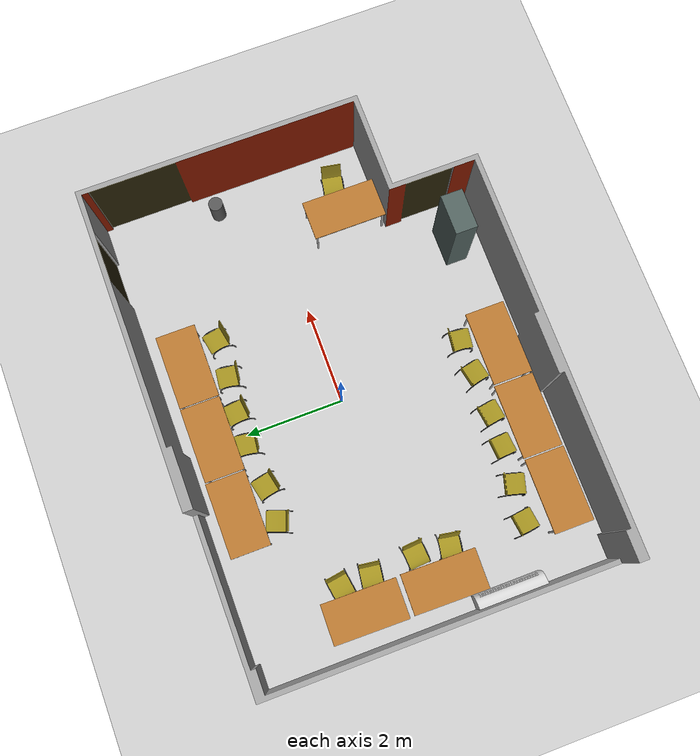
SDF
<sdf version="1.6">
 <world name="default">
  <plugin name="projekt_przejsciowy" filename="libprojekt_przejsciowy.so"/>
  <light name="direct_light" type="directional">
   <pose>0 0 10 0 -0 0</pose>
   <diffuse>1 1 1 1</diffuse>
   <specular>0.1 0.1 0.1 1</specular>
   <attenuation>
    <range>1000</range>
    <constant>0.9</constant>
    <linear>0.01</linear>
    <quadratic>0.001</quadratic>
   </attenuation>
   <direction>-0.5 0.5 -1</direction>
  </light>
  <light name="point_light" type="point">
   <pose>0 0 2 0 -0 0</pose>
   <diffuse>1 1 1 1</diffuse>
   <specular>0.1 0.1 0.1 1</specular>
   <attenuation>
    <range>1000</range>
    <constant>0.9</constant>
    <linear>0.01</linear>
    <quadratic>0.001</quadratic>
   </attenuation>
   <direction>-0.5 0.5 -1</direction>
  </light>
  <model name="ground_plane">
   <static>1</static>
   <link name="link">
    <collision name="collision">
     <geometry><plane><normal>0 0 1</normal><size>100 100</size></plane></geometry>
     <surface><friction><ode><mu>100</mu><mu2>50</mu2></ode></friction></surface>
    </collision>
    <visual name="visual">
     <cast_shadows>0</cast_shadows>
     <geometry><plane><normal>0 0 1</normal><size>100 100</size></plane></geometry>
     <material>
      <script><uri>file://media/materials/scripts/gazebo.material</uri><name>Gazebo/Grey</name></script>
     </material>
    </visual>
   </link>
  </model>
  <gravity>0 0 -9.8</gravity>
  <magnetic_field>6e-06 2.3e-05 -4.2e-05</magnetic_field>
  <atmosphere type="adiabatic"/>
  <physics name="default_physics" default="0" type="ode">
   <max_step_size>0.001</max_step_size>
   <real_time_factor>1</real_time_factor>
   <real_time_update_rate>1000</real_time_update_rate>
  </physics>
  <scene><ambient>0.4 0.4 0.4 1</ambient><background>0.7 0.7 0.7 1</background><shadows>0</shadows></scene>
  <spherical_coordinates>
   <surface_model>EARTH_WGS84</surface_model>
   <latitude_deg>0</latitude_deg>
   <longitude_deg>0</longitude_deg>
   <elevation>0</elevation>
   <heading_deg>0</heading_deg>
  </spherical_coordinates>
  <model name="sala_L15">
   <static>1</static>
   <link name="link">
    <collision name="collision">
     <geometry><mesh><uri>model://sala_L15/meshes/Sala_L15.dae</uri><scale>1 1 1</scale></mesh></geometry>
    </collision>
    <visual name="visual">
     <geometry><mesh><uri>model://sala_L15/meshes/Sala_L15.dae</uri><scale>1 1 1</scale></mesh></geometry>
    </visual>
   </link>
   <pose>3.14624 -2.13364 0 0 -0 0</pose>
  </model>
  <model name="stol">
   <static>1</static>
   <link name="link">
    <collision name="collision">
     <geometry><mesh><uri>model://stol/meshes/Stol.dae</uri><scale>1 1 1</scale></mesh></geometry>
    </collision>
    <visual name="visual">
     <geometry><mesh><uri>model://stol/meshes/Stol.dae</uri><scale>1 1 1</scale></mesh></geometry>
    </visual>
   </link>
   <pose>3.21652 -0.648206 0 0 0 -1.5708</pose>
  </model>
  <model name="krzeslo">
   <static>1</static>
   <link name="link">
    <collision name="collision">
     <geometry><mesh><uri>model://krzeslo/meshes/Krzeslo.dae</uri><scale>1 1 1</scale></mesh></geometry>
    </collision>
    <visual name="visual">
     <geometry><mesh><uri>model://krzeslo/meshes/Krzeslo.dae</uri><scale>1 1 1</scale></mesh></geometry>
    </visual>
   </link>
   <pose>3.97712 -1.54865 0 0 0 -1.75194</pose>
  </model>
  <model name="smietnik">
   <static>1</static>
   <link name="link">
    <collision name="collision">
     <geometry><mesh><uri>model://smietnik/meshes/Smietnik.dae</uri><scale>1 1 1</scale></mesh></geometry>
    </collision>
    <visual name="visual">
     <geometry><mesh><uri>model://smietnik/meshes/Smietnik.dae</uri><scale>1 1 1</scale></mesh></geometry>
    </visual>
   </link>
   <pose>4.61075 1.02676 0 0 -0 0</pose>
  </model>
  <model name="stol_0">
   <static>1</static>
   <link name="link">
    <collision name="collision">
     <geometry><mesh><uri>model://stol/meshes/Stol.dae</uri><scale>1 1 1</scale></mesh></geometry>
    </collision>
    <visual name="visual">
     <geometry><mesh><uri>model://stol/meshes/Stol.dae</uri><scale>1 1 1</scale></mesh></geometry>
    </visual>
   </link>
   <pose>0.861901 2.2866 0 0 -0 0</pose>
  </model>
  <model name="stol_1">
   <static>1</static>
   <link name="link">
    <collision name="collision">
     <geometry><mesh><uri>model://stol/meshes/Stol.dae</uri><scale>1 1 1</scale></mesh></geometry>
    </collision>
    <visual name="visual">
     <geometry><mesh><uri>model://stol/meshes/Stol.dae</uri><scale>1 1 1</scale></mesh></geometry>
    </visual>
   </link>
   <pose>-0.663628 2.2885 0 0 -0 0</pose>
  </model>
  <model name="stol_2">
   <static>1</static>
   <link name="link">
    <collision name="collision">
     <geometry><mesh><uri>model://stol/meshes/Stol.dae</uri><scale>1 1 1</scale></mesh></geometry>
    </collision>
    <visual name="visual">
     <geometry><mesh><uri>model://stol/meshes/Stol.dae</uri><scale>1 1 1</scale></mesh></geometry>
    </visual>
   </link>
   <pose>-2.18973 2.29579 0 0 -0 0</pose>
  </model>
  <model name="stol_5">
   <static>1</static>
   <link name="link">
    <collision name="collision">
     <geometry><mesh><uri>model://stol/meshes/Stol.dae</uri><scale>1 1 1</scale></mesh></geometry>
    </collision>
    <visual name="visual">
     <geometry><mesh><uri>model://stol/meshes/Stol.dae</uri><scale>1 1 1</scale></mesh></geometry>
    </visual>
   </link>
   <pose>-2.34724 -3.57148 0 0 -0 0</pose>
  </model>
  <model name="stol_6">
   <static>1</static>
   <link name="link">
    <collision name="collision">
     <geometry><mesh><uri>model://stol/meshes/Stol.dae</uri><scale>1 1 1</scale></mesh></geometry>
    </collision>
    <visual name="visual">
     <geometry><mesh><uri>model://stol/meshes/Stol.dae</uri><scale>1 1 1</scale></mesh></geometry>
    </visual>
   </link>
   <pose>-0.813506 -3.5798 0 0 -0 0</pose>
  </model>
  <model name="szafa">
   <static>1</static>
   <link name="link">
    <collision name="collision">
     <geometry><mesh><uri>model://szafa/meshes/Szafa.dae</uri><scale>1 1 1</scale></mesh></geometry>
    </collision>
    <visual name="visual">
     <geometry><mesh><uri>model://szafa/meshes/Szafa.dae</uri><scale>1 1 1</scale></mesh></geometry>
    </visual>
   </link>
   <pose>1.92281 -3.4529 0 0 -0 0</pose>
  </model>
  <model name="kaloryfer">
   <static>1</static>
   <link name="link">
    <collision name="collision">
     <geometry><mesh><uri>model://kaloryfer/meshes/Kaloryfer.dae</uri><scale>1 1 1</scale></mesh></geometry>
    </collision>
    <visual name="visual">
     <geometry><mesh><uri>model://kaloryfer/meshes/Kaloryfer.dae</uri><scale>1 1 1</scale></mesh></geometry>
    </visual>
   </link>
   <pose>-4.45024 -2.41162 0 0 -0 1.5708</pose>
  </model>
  <model name="krzeslo_0">
   <static>1</static>
   <link name="link">
    <collision name="collision">
     <geometry><mesh><uri>model://krzeslo/meshes/Krzeslo.dae</uri><scale>1 1 1</scale></mesh></geometry>
    </collision>
    <visual name="visual">
     <geometry><mesh><uri>model://krzeslo/meshes/Krzeslo.dae</uri><scale>1 1 1</scale></mesh></geometry>
    </visual>
   </link>
   <pose>1.70222 2.11121 0 0 0 -2.95301</pose>
  </model>
  <model name="krzeslo_0_clone">
   <static>1</static>
   <link name="link">
    <collision name="collision">
     <geometry><mesh><uri>model://krzeslo/meshes/Krzeslo.dae</uri><scale>1 1 1</scale></mesh></geometry>
    </collision>
    <visual name="visual">
     <geometry><mesh><uri>model://krzeslo/meshes/Krzeslo.dae</uri><scale>1 1 1</scale></mesh></geometry>
    </visual>
   </link>
   <pose>0.981593 2.20704 0 0 -0 3.01832</pose>
  </model>
  <model name="krzeslo_0_clone_0">
   <static>1</static>
   <link name="link">
    <collision name="collision">
     <geometry><mesh><uri>model://krzeslo/meshes/Krzeslo.dae</uri><scale>1 1 1</scale></mesh></geometry>
    </collision>
    <visual name="visual">
     <geometry><mesh><uri>model://krzeslo/meshes/Krzeslo.dae</uri><scale>1 1 1</scale></mesh></geometry>
    </visual>
   </link>
   <pose>0.202022 2.24026 0 0 0 -3.03765</pose>
  </model>
  <model name="krzeslo_0_clone_1">
   <static>1</static>
   <link name="link">
    <collision name="collision">
     <geometry><mesh><uri>model://krzeslo/meshes/Krzeslo.dae</uri><scale>1 1 1</scale></mesh></geometry>
    </collision>
    <visual name="visual">
     <geometry><mesh><uri>model://krzeslo/meshes/Krzeslo.dae</uri><scale>1 1 1</scale></mesh></geometry>
    </visual>
   </link>
   <pose>-0.41119 2.30069 0 0 -0 3.01665</pose>
  </model>
  <model name="stol_clone">
   <static>1</static>
   <link name="link">
    <collision name="collision">
     <geometry><mesh><uri>model://stol/meshes/Stol.dae</uri><scale>1 1 1</scale></mesh></geometry>
    </collision>
    <visual name="visual">
     <geometry><mesh><uri>model://stol/meshes/Stol.dae</uri><scale>1 1 1</scale></mesh></geometry>
    </visual>
   </link>
   <pose>-4.31419 1.73128 0 0 0 -1.58575</pose>
  </model>
  <model name="stol_clone_0">
   <static>1</static>
   <link name="link">
    <collision name="collision">
     <geometry><mesh><uri>model://stol/meshes/Stol.dae</uri><scale>1 1 1</scale></mesh></geometry>
    </collision>
    <visual name="visual">
     <geometry><mesh><uri>model://stol/meshes/Stol.dae</uri><scale>1 1 1</scale></mesh></geometry>
    </visual>
   </link>
   <pose>-4.32079 0.139882 0 0 0 -1.58575</pose>
  </model>
  <model name="stol_5_clone">
   <static>1</static>
   <link name="link">
    <collision name="collision">
     <geometry><mesh><uri>model://stol/meshes/Stol.dae</uri><scale>1 1 1</scale></mesh></geometry>
    </collision>
    <visual name="visual">
     <geometry><mesh><uri>model://stol/meshes/Stol.dae</uri><scale>1 1 1</scale></mesh></geometry>
    </visual>
   </link>
   <pose>-3.87513 -3.5816 0 0 -0 0</pose>
  </model>
  <model name="krzeslo_0_clone_clone">
   <static>1</static>
   <link name="link">
    <collision name="collision">
     <geometry><mesh><uri>model://krzeslo/meshes/Krzeslo.dae</uri><scale>1 1 1</scale></mesh></geometry>
    </collision>
    <visual name="visual">
     <geometry><mesh><uri>model://krzeslo/meshes/Krzeslo.dae</uri><scale>1 1 1</scale></mesh></geometry>
    </visual>
   </link>
   <pose>-1.37457 2.14992 0 0 0 -2.92538</pose>
  </model>
  <model name="krzeslo_0_clone_clone_0">
   <static>1</static>
   <link name="link">
    <collision name="collision">
     <geometry><mesh><uri>model://krzeslo/meshes/Krzeslo.dae</uri><scale>1 1 1</scale></mesh></geometry>
    </collision>
    <visual name="visual">
     <geometry><mesh><uri>model://krzeslo/meshes/Krzeslo.dae</uri><scale>1 1 1</scale></mesh></geometry>
    </visual>
   </link>
   <pose>-1.95892 2.28323 0 0 -0 2.78777</pose>
  </model>
  <model name="krzeslo_0_clone_clone_0_clone">
   <static>1</static>
   <link name="link">
    <collision name="collision">
     <geometry><mesh><uri>model://krzeslo/meshes/Krzeslo.dae</uri><scale>1 1 1</scale></mesh></geometry>
    </collision>
    <visual name="visual">
     <geometry><mesh><uri>model://krzeslo/meshes/Krzeslo.dae</uri><scale>1 1 1</scale></mesh></geometry>
    </visual>
   </link>
   <pose>-3.59243 1.02759 0 0 0 -1.4196</pose>
  </model>
  <model name="krzeslo_0_clone_clone_0_clone_clone">
   <static>1</static>
   <link name="link">
    <collision name="collision">
     <geometry><mesh><uri>model://krzeslo/meshes/Krzeslo.dae</uri><scale>1 1 1</scale></mesh></geometry>
    </collision>
    <visual name="visual">
     <geometry><mesh><uri>model://krzeslo/meshes/Krzeslo.dae</uri><scale>1 1 1</scale></mesh></geometry>
    </visual>
   </link>
   <pose>-3.66431 0.478732 0 0 0 -1.70864</pose>
  </model>
  <model name="krzeslo_0_clone_clone_0_clone_clone_0">
   <static>1</static>
   <link name="link">
    <collision name="collision">
     <geometry><mesh><uri>model://krzeslo/meshes/Krzeslo.dae</uri><scale>1 1 1</scale></mesh></geometry>
    </collision>
    <visual name="visual">
     <geometry><mesh><uri>model://krzeslo/meshes/Krzeslo.dae</uri><scale>1 1 1</scale></mesh></geometry>
    </visual>
   </link>
   <pose>-3.55468 -0.50423 0 0 0 -1.49503</pose>
  </model>
  <model name="krzeslo_0_clone_clone_0_clone_clone_1">
   <static>1</static>
   <link name="link">
    <collision name="collision">
     <geometry><mesh><uri>model://krzeslo/meshes/Krzeslo.dae</uri><scale>1 1 1</scale></mesh></geometry>
    </collision>
    <visual name="visual">
     <geometry><mesh><uri>model://krzeslo/meshes/Krzeslo.dae</uri><scale>1 1 1</scale></mesh></geometry>
    </visual>
   </link>
   <pose>-3.68012 -1.1222 0 0 0 -1.74182</pose>
  </model>
  <model name="krzeslo_0_clone_clone_0_clone_clone_2">
   <static>1</static>
   <link name="link">
    <collision name="collision">
     <geometry><mesh><uri>model://krzeslo/meshes/Krzeslo.dae</uri><scale>1 1 1</scale></mesh></geometry>
    </collision>
    <visual name="visual">
     <geometry><mesh><uri>model://krzeslo/meshes/Krzeslo.dae</uri><scale>1 1 1</scale></mesh></geometry>
    </visual>
   </link>
   <pose>-3.24232 -2.64695 0 0 -0 0.135281</pose>
  </model>
  <model name="krzeslo_0_clone_clone_0_clone_clone_2_clone">
   <static>1</static>
   <link name="link">
    <collision name="collision">
     <geometry><mesh><uri>model://krzeslo/meshes/Krzeslo.dae</uri><scale>1 1 1</scale></mesh></geometry>
    </collision>
    <visual name="visual">
     <geometry><mesh><uri>model://krzeslo/meshes/Krzeslo.dae</uri><scale>1 1 1</scale></mesh></geometry>
    </visual>
   </link>
   <pose>-2.60153 -2.81001 0 0 0 -0.275515</pose>
  </model>
  <model name="krzeslo_0_clone_clone_0_clone_clone_2_clone_0">
   <static>1</static>
   <link name="link">
    <collision name="collision">
     <geometry><mesh><uri>model://krzeslo/meshes/Krzeslo.dae</uri><scale>1 1 1</scale></mesh></geometry>
    </collision>
    <visual name="visual">
     <geometry><mesh><uri>model://krzeslo/meshes/Krzeslo.dae</uri><scale>1 1 1</scale></mesh></geometry>
    </visual>
   </link>
   <pose>-1.74879 -2.79902 0 0 -0 0.086162</pose>
  </model>
  <model name="krzeslo_0_clone_clone_0_clone_clone_2_clone_1">
   <static>1</static>
   <link name="link">
    <collision name="collision">
     <geometry><mesh><uri>model://krzeslo/meshes/Krzeslo.dae</uri><scale>1 1 1</scale></mesh></geometry>
    </collision>
    <visual name="visual">
     <geometry><mesh><uri>model://krzeslo/meshes/Krzeslo.dae</uri><scale>1 1 1</scale></mesh></geometry>
    </visual>
   </link>
   <pose>-1.0544 -2.81539 0 0 -0 0.144848</pose>
  </model>
  <model name="krzeslo_0_clone_clone_0_clone_clone_2_clone_2">
   <static>1</static>
   <link name="link">
    <collision name="collision">
     <geometry><mesh><uri>model://krzeslo/meshes/Krzeslo.dae</uri><scale>1 1 1</scale></mesh></geometry>
    </collision>
    <visual name="visual">
     <geometry><mesh><uri>model://krzeslo/meshes/Krzeslo.dae</uri><scale>1 1 1</scale></mesh></geometry>
    </visual>
   </link>
   <pose>-0.183704 -2.80267 0 0 -0 0.206563</pose>
  </model>
  <model name="krzeslo_0_clone_clone_0_clone_clone_2_clone_3">
   <static>1</static>
   <link name="link">
    <collision name="collision">
     <geometry><mesh><uri>model://krzeslo/meshes/Krzeslo.dae</uri><scale>1 1 1</scale></mesh></geometry>
    </collision>
    <visual name="visual">
     <geometry><mesh><uri>model://krzeslo/meshes/Krzeslo.dae</uri><scale>1 1 1</scale></mesh></geometry>
    </visual>
   </link>
   <pose>0.469263 -2.85605 0 0 0 -0.116567</pose>
  </model>
 </world>
</sdf>
